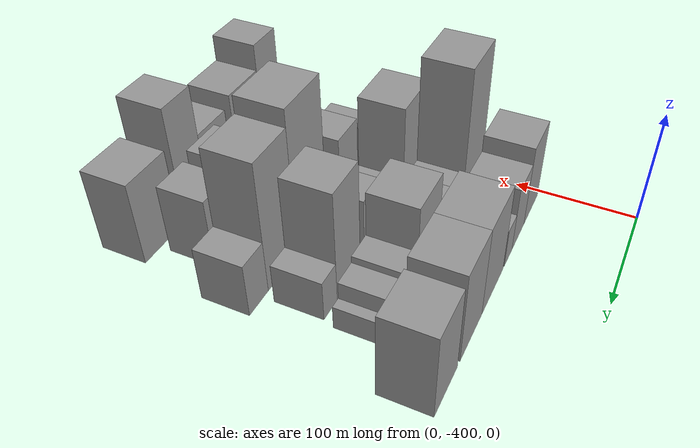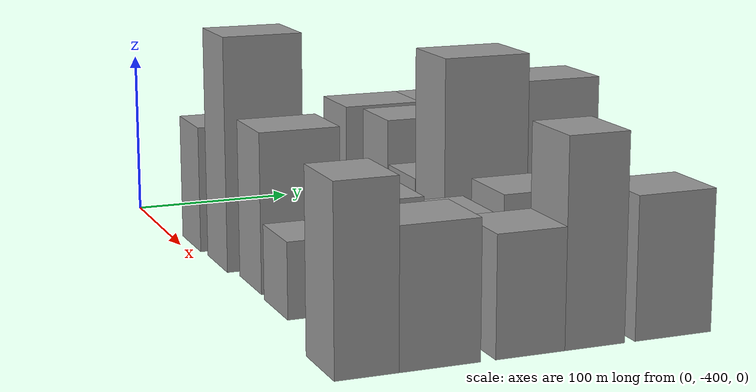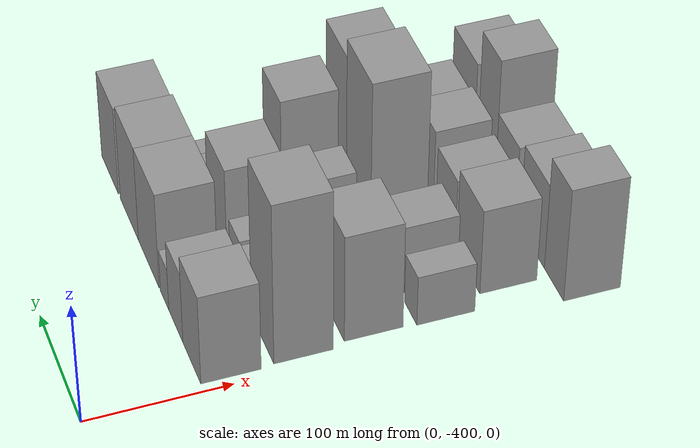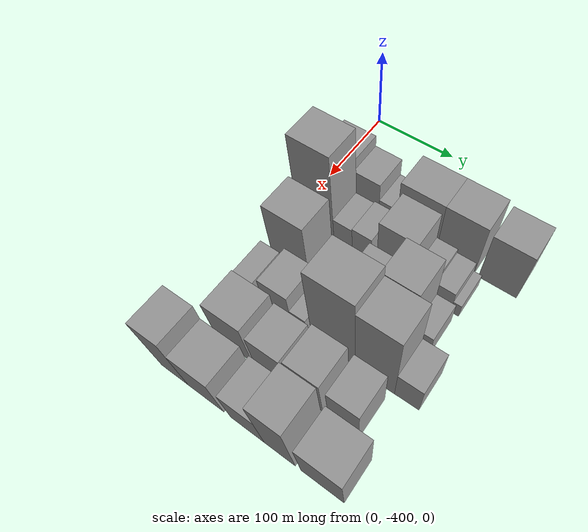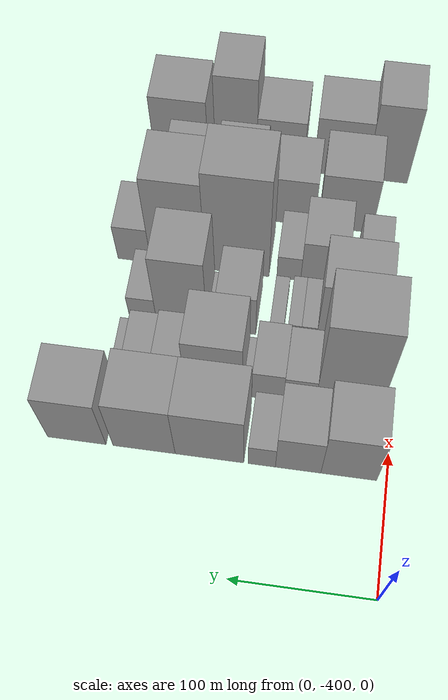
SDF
<sdf version="1.6">
 <world name="default">
  <model name="building_12">
   <static>1</static>
   <pose>100.0000 -373.7476 0 0.000000 0.000000 0.000000</pose>
   <link name="link">
    <pose>0 0 37.50 0 0 0</pose>
    <collision name="collision"><geometry><box><size>40.0000 38.7602 75.0000</size></box></geometry></collision>
    <visual name="visual">
     <cast_shadows>0</cast_shadows>
     <geometry><box><size>40.0000 38.7602 75.0000</size></box></geometry>
     <material>
      <script>
       <uri>model://grey_wall/materials/scripts</uri>
       <uri>model://grey_wall/materials/textures</uri>
       <name>vrc/grey_wall</name>
      </script>
     </material>
    </visual>
   </link>
  </model>
  <model name="building_13">
   <static>1</static>
   <pose>100.0000 -338.5559 0 0.000000 0.000000 0.000000</pose>
   <link name="link">
    <pose>0 0 30.00 0 0 0</pose>
    <collision name="collision"><geometry><box><size>40.0000 31.6232 60.0000</size></box></geometry></collision>
    <visual name="visual">
     <cast_shadows>0</cast_shadows>
     <geometry><box><size>40.0000 31.6232 60.0000</size></box></geometry>
     <material>
      <script>
       <uri>model://grey_wall/materials/scripts</uri>
       <uri>model://grey_wall/materials/textures</uri>
       <name>vrc/grey_wall</name>
      </script>
     </material>
    </visual>
   </link>
  </model>
  <model name="building_14">
   <static>1</static>
   <pose>100.0000 -313.1680 0 0.000000 0.000000 0.000000</pose>
   <link name="link">
    <pose>0 0 18.00 0 0 0</pose>
    <collision name="collision"><geometry><box><size>40.0000 19.1526 36.0000</size></box></geometry></collision>
    <visual name="visual">
     <cast_shadows>0</cast_shadows>
     <geometry><box><size>40.0000 19.1526 36.0000</size></box></geometry>
     <material>
      <script>
       <uri>model://grey_wall/materials/scripts</uri>
       <uri>model://grey_wall/materials/textures</uri>
       <name>vrc/grey_wall</name>
      </script>
     </material>
    </visual>
   </link>
  </model>
  <model name="building_15">
   <static>1</static>
   <pose>100.0000 -276.4596 0 0.000000 0.000000 0.000000</pose>
   <link name="link">
    <pose>0 0 40.50 0 0 0</pose>
    <collision name="collision"><geometry><box><size>40.0000 48.2642 81.0000</size></box></geometry></collision>
    <visual name="visual">
     <cast_shadows>0</cast_shadows>
     <geometry><box><size>40.0000 48.2642 81.0000</size></box></geometry>
     <material>
      <script>
       <uri>model://grey_wall/materials/scripts</uri>
       <uri>model://grey_wall/materials/textures</uri>
       <name>vrc/grey_wall</name>
      </script>
     </material>
    </visual>
   </link>
  </model>
  <model name="building_16">
   <static>1</static>
   <pose>100.0000 -230.2445 0 0.000000 0.000000 0.000000</pose>
   <link name="link">
    <pose>0 0 40.50 0 0 0</pose>
    <collision name="collision"><geometry><box><size>40.0000 44.1661 81.0000</size></box></geometry></collision>
    <visual name="visual">
     <cast_shadows>0</cast_shadows>
     <geometry><box><size>40.0000 44.1661 81.0000</size></box></geometry>
     <material>
      <script>
       <uri>model://grey_wall/materials/scripts</uri>
       <uri>model://grey_wall/materials/textures</uri>
       <name>vrc/grey_wall</name>
      </script>
     </material>
    </visual>
   </link>
  </model>
  <model name="building_17">
   <static>1</static>
   <pose>100.0000 -182.2852 0 0.000000 0.000000 0.000000</pose>
   <link name="link">
    <pose>0 0 37.50 0 0 0</pose>
    <collision name="collision"><geometry><box><size>40.0000 41.7525 75.0000</size></box></geometry></collision>
    <visual name="visual">
     <cast_shadows>0</cast_shadows>
     <geometry><box><size>40.0000 41.7525 75.0000</size></box></geometry>
     <material>
      <script>
       <uri>model://grey_wall/materials/scripts</uri>
       <uri>model://grey_wall/materials/textures</uri>
       <name>vrc/grey_wall</name>
      </script>
     </material>
    </visual>
   </link>
  </model>
  <model name="building_68">
   <static>1</static>
   <pose>149.0000 -368.2810 0 0.000000 0.000000 0.000000</pose>
   <link name="link">
    <pose>0 0 67.50 0 0 0</pose>
    <collision name="collision"><geometry><box><size>40.0000 46.1357 135.0000</size></box></geometry></collision>
    <visual name="visual">
     <cast_shadows>0</cast_shadows>
     <geometry><box><size>40.0000 46.1357 135.0000</size></box></geometry>
     <material>
      <script>
       <uri>model://grey_wall/materials/scripts</uri>
       <uri>model://grey_wall/materials/textures</uri>
       <name>vrc/grey_wall</name>
      </script>
     </material>
    </visual>
   </link>
  </model>
  <model name="building_69">
   <static>1</static>
   <pose>149.0000 -333.8725 0 0.000000 0.000000 0.000000</pose>
   <link name="link">
    <pose>0 0 21.00 0 0 0</pose>
    <collision name="collision"><geometry><box><size>40.0000 22.6814 42.0000</size></box></geometry></collision>
    <visual name="visual">
     <cast_shadows>0</cast_shadows>
     <geometry><box><size>40.0000 22.6814 42.0000</size></box></geometry>
     <material>
      <script>
       <uri>model://grey_wall/materials/scripts</uri>
       <uri>model://grey_wall/materials/textures</uri>
       <name>vrc/grey_wall</name>
      </script>
     </material>
    </visual>
   </link>
  </model>
  <model name="building_70">
   <static>1</static>
   <pose>149.0000 -311.1045 0 0.000000 0.000000 0.000000</pose>
   <link name="link">
    <pose>0 0 22.50 0 0 0</pose>
    <collision name="collision"><geometry><box><size>40.0000 22.8545 45.0000</size></box></geometry></collision>
    <visual name="visual">
     <cast_shadows>0</cast_shadows>
     <geometry><box><size>40.0000 22.8545 45.0000</size></box></geometry>
     <material>
      <script>
       <uri>model://grey_wall/materials/scripts</uri>
       <uri>model://grey_wall/materials/textures</uri>
       <name>vrc/grey_wall</name>
      </script>
     </material>
    </visual>
   </link>
  </model>
  <model name="building_71">
   <static>1</static>
   <pose>149.0000 -296.3232 0 0.000000 0.000000 0.000000</pose>
   <link name="link">
    <pose>0 0 7.50 0 0 0</pose>
    <collision name="collision"><geometry><box><size>40.0000 6.7082 15.0000</size></box></geometry></collision>
    <visual name="visual">
     <cast_shadows>0</cast_shadows>
     <geometry><box><size>40.0000 6.7082 15.0000</size></box></geometry>
     <material>
      <script>
       <uri>model://grey_wall/materials/scripts</uri>
       <uri>model://grey_wall/materials/textures</uri>
       <name>vrc/grey_wall</name>
      </script>
     </material>
    </visual>
   </link>
  </model>
  <model name="building_72">
   <static>1</static>
   <pose>149.0000 -272.2100 0 0.000000 0.000000 0.000000</pose>
   <link name="link">
    <pose>0 0 40.50 0 0 0</pose>
    <collision name="collision"><geometry><box><size>40.0000 41.5181 81.0000</size></box></geometry></collision>
    <visual name="visual">
     <cast_shadows>0</cast_shadows>
     <geometry><box><size>40.0000 41.5181 81.0000</size></box></geometry>
     <material>
      <script>
       <uri>model://grey_wall/materials/scripts</uri>
       <uri>model://grey_wall/materials/textures</uri>
       <name>vrc/grey_wall</name>
      </script>
     </material>
    </visual>
   </link>
  </model>
  <model name="building_73">
   <static>1</static>
   <pose>149.0000 -239.9075 0 0.000000 0.000000 0.000000</pose>
   <link name="link">
    <pose>0 0 21.00 0 0 0</pose>
    <collision name="collision"><geometry><box><size>40.0000 23.0868 42.0000</size></box></geometry></collision>
    <visual name="visual">
     <cast_shadows>0</cast_shadows>
     <geometry><box><size>40.0000 23.0868 42.0000</size></box></geometry>
     <material>
      <script>
       <uri>model://grey_wall/materials/scripts</uri>
       <uri>model://grey_wall/materials/textures</uri>
       <name>vrc/grey_wall</name>
      </script>
     </material>
    </visual>
   </link>
  </model>
  <model name="building_74">
   <static>1</static>
   <pose>149.0000 -217.8413 0 0.000000 0.000000 0.000000</pose>
   <link name="link">
    <pose>0 0 18.00 0 0 0</pose>
    <collision name="collision"><geometry><box><size>40.0000 21.0455 36.0000</size></box></geometry></collision>
    <visual name="visual">
     <cast_shadows>0</cast_shadows>
     <geometry><box><size>40.0000 21.0455 36.0000</size></box></geometry>
     <material>
      <script>
       <uri>model://grey_wall/materials/scripts</uri>
       <uri>model://grey_wall/materials/textures</uri>
       <name>vrc/grey_wall</name>
      </script>
     </material>
    </visual>
   </link>
  </model>
  <model name="building_75">
   <static>1</static>
   <pose>149.0000 -202.8934 0 0.000000 0.000000 0.000000</pose>
   <link name="link">
    <pose>0 0 10.50 0 0 0</pose>
    <collision name="collision"><geometry><box><size>40.0000 8.8504 21.0000</size></box></geometry></collision>
    <visual name="visual">
     <cast_shadows>0</cast_shadows>
     <geometry><box><size>40.0000 8.8504 21.0000</size></box></geometry>
     <material>
      <script>
       <uri>model://grey_wall/materials/scripts</uri>
       <uri>model://grey_wall/materials/textures</uri>
       <name>vrc/grey_wall</name>
      </script>
     </material>
    </visual>
   </link>
  </model>
  <model name="building_118">
   <static>1</static>
   <pose>198.0000 -363.7553 0 0.000000 0.000000 0.000000</pose>
   <link name="link">
    <pose>0 0 45.00 0 0 0</pose>
    <collision name="collision"><geometry><box><size>40.0000 46.0238 90.0000</size></box></geometry></collision>
    <visual name="visual">
     <cast_shadows>0</cast_shadows>
     <geometry><box><size>40.0000 46.0238 90.0000</size></box></geometry>
     <material>
      <script>
       <uri>model://grey_wall/materials/scripts</uri>
       <uri>model://grey_wall/materials/textures</uri>
       <name>vrc/grey_wall</name>
      </script>
     </material>
    </visual>
   </link>
  </model>
  <model name="building_119">
   <static>1</static>
   <pose>198.0000 -334.9804 0 0.000000 0.000000 0.000000</pose>
   <link name="link">
    <pose>0 0 12.00 0 0 0</pose>
    <collision name="collision"><geometry><box><size>40.0000 11.5260 24.0000</size></box></geometry></collision>
    <visual name="visual">
     <cast_shadows>0</cast_shadows>
     <geometry><box><size>40.0000 11.5260 24.0000</size></box></geometry>
     <material>
      <script>
       <uri>model://grey_wall/materials/scripts</uri>
       <uri>model://grey_wall/materials/textures</uri>
       <name>vrc/grey_wall</name>
      </script>
     </material>
    </visual>
   </link>
  </model>
  <model name="building_120">
   <static>1</static>
   <pose>198.0000 -324.3144 0 0.000000 0.000000 0.000000</pose>
   <link name="link">
    <pose>0 0 12.00 0 0 0</pose>
    <collision name="collision"><geometry><box><size>40.0000 9.8062 24.0000</size></box></geometry></collision>
    <visual name="visual">
     <cast_shadows>0</cast_shadows>
     <geometry><box><size>40.0000 9.8062 24.0000</size></box></geometry>
     <material>
      <script>
       <uri>model://grey_wall/materials/scripts</uri>
       <uri>model://grey_wall/materials/textures</uri>
       <name>vrc/grey_wall</name>
      </script>
     </material>
    </visual>
   </link>
  </model>
  <model name="building_121">
   <static>1</static>
   <pose>198.0000 -311.2843 0 0.000000 0.000000 0.000000</pose>
   <link name="link">
    <pose>0 0 10.50 0 0 0</pose>
    <collision name="collision"><geometry><box><size>40.0000 10.2540 21.0000</size></box></geometry></collision>
    <visual name="visual">
     <cast_shadows>0</cast_shadows>
     <geometry><box><size>40.0000 10.2540 21.0000</size></box></geometry>
     <material>
      <script>
       <uri>model://grey_wall/materials/scripts</uri>
       <uri>model://grey_wall/materials/textures</uri>
       <name>vrc/grey_wall</name>
      </script>
     </material>
    </visual>
   </link>
  </model>
  <model name="building_122">
   <static>1</static>
   <pose>198.0000 -281.6375 0 0.000000 0.000000 0.000000</pose>
   <link name="link">
    <pose>0 0 28.50 0 0 0</pose>
    <collision name="collision"><geometry><box><size>40.0000 29.0395 57.0000</size></box></geometry></collision>
    <visual name="visual">
     <cast_shadows>0</cast_shadows>
     <geometry><box><size>40.0000 29.0395 57.0000</size></box></geometry>
     <material>
      <script>
       <uri>model://grey_wall/materials/scripts</uri>
       <uri>model://grey_wall/materials/textures</uri>
       <name>vrc/grey_wall</name>
      </script>
     </material>
    </visual>
   </link>
  </model>
  <model name="building_123">
   <static>1</static>
   <pose>198.0000 -263.5571 0 0.000000 0.000000 0.000000</pose>
   <link name="link">
    <pose>0 0 7.50 0 0 0</pose>
    <collision name="collision"><geometry><box><size>40.0000 7.1214 15.0000</size></box></geometry></collision>
    <visual name="visual">
     <cast_shadows>0</cast_shadows>
     <geometry><box><size>40.0000 7.1214 15.0000</size></box></geometry>
     <material>
      <script>
       <uri>model://grey_wall/materials/scripts</uri>
       <uri>model://grey_wall/materials/textures</uri>
       <name>vrc/grey_wall</name>
      </script>
     </material>
    </visual>
   </link>
  </model>
  <model name="building_124">
   <static>1</static>
   <pose>198.0000 -241.0578 0 0.000000 0.000000 0.000000</pose>
   <link name="link">
    <pose>0 0 49.50 0 0 0</pose>
    <collision name="collision"><geometry><box><size>40.0000 37.8770 99.0000</size></box></geometry></collision>
    <visual name="visual">
     <cast_shadows>0</cast_shadows>
     <geometry><box><size>40.0000 37.8770 99.0000</size></box></geometry>
     <material>
      <script>
       <uri>model://grey_wall/materials/scripts</uri>
       <uri>model://grey_wall/materials/textures</uri>
       <name>vrc/grey_wall</name>
      </script>
     </material>
    </visual>
   </link>
  </model>
  <model name="building_125">
   <static>1</static>
   <pose>198.0000 -212.0112 0 0.000000 0.000000 0.000000</pose>
   <link name="link">
    <pose>0 0 18.00 0 0 0</pose>
    <collision name="collision"><geometry><box><size>40.0000 20.2162 36.0000</size></box></geometry></collision>
    <visual name="visual">
     <cast_shadows>0</cast_shadows>
     <geometry><box><size>40.0000 20.2162 36.0000</size></box></geometry>
     <material>
      <script>
       <uri>model://grey_wall/materials/scripts</uri>
       <uri>model://grey_wall/materials/textures</uri>
       <name>vrc/grey_wall</name>
      </script>
     </material>
    </visual>
   </link>
  </model>
  <model name="building_171">
   <static>1</static>
   <pose>247.0000 -376.6970 0 0.000000 0.000000 0.000000</pose>
   <link name="link">
    <pose>0 0 21.00 0 0 0</pose>
    <collision name="collision"><geometry><box><size>40.0000 22.9494 42.0000</size></box></geometry></collision>
    <visual name="visual">
     <cast_shadows>0</cast_shadows>
     <geometry><box><size>40.0000 22.9494 42.0000</size></box></geometry>
     <material>
      <script>
       <uri>model://grey_wall/materials/scripts</uri>
       <uri>model://grey_wall/materials/textures</uri>
       <name>vrc/grey_wall</name>
      </script>
     </material>
    </visual>
   </link>
  </model>
  <model name="building_172">
   <static>1</static>
   <pose>247.0000 -340.5945 0 0.000000 0.000000 0.000000</pose>
   <link name="link">
    <pose>0 0 28.50 0 0 0</pose>
    <collision name="collision"><geometry><box><size>40.0000 33.2554 57.0000</size></box></geometry></collision>
    <visual name="visual">
     <cast_shadows>0</cast_shadows>
     <geometry><box><size>40.0000 33.2554 57.0000</size></box></geometry>
     <material>
      <script>
       <uri>model://grey_wall/materials/scripts</uri>
       <uri>model://grey_wall/materials/textures</uri>
       <name>vrc/grey_wall</name>
      </script>
     </material>
    </visual>
   </link>
  </model>
  <model name="building_173">
   <static>1</static>
   <pose>247.0000 -314.8777 0 0.000000 0.000000 0.000000</pose>
   <link name="link">
    <pose>0 0 16.50 0 0 0</pose>
    <collision name="collision"><geometry><box><size>40.0000 18.1783 33.0000</size></box></geometry></collision>
    <visual name="visual">
     <cast_shadows>0</cast_shadows>
     <geometry><box><size>40.0000 18.1783 33.0000</size></box></geometry>
     <material>
      <script>
       <uri>model://grey_wall/materials/scripts</uri>
       <uri>model://grey_wall/materials/textures</uri>
       <name>vrc/grey_wall</name>
      </script>
     </material>
    </visual>
   </link>
  </model>
  <model name="building_174">
   <static>1</static>
   <pose>247.0000 -275.4045 0 0.000000 0.000000 0.000000</pose>
   <link name="link">
    <pose>0 0 66.00 0 0 0</pose>
    <collision name="collision"><geometry><box><size>40.0000 48.7681 132.0000</size></box></geometry></collision>
    <visual name="visual">
     <cast_shadows>0</cast_shadows>
     <geometry><box><size>40.0000 48.7681 132.0000</size></box></geometry>
     <material>
      <script>
       <uri>model://grey_wall/materials/scripts</uri>
       <uri>model://grey_wall/materials/textures</uri>
       <name>vrc/grey_wall</name>
      </script>
     </material>
    </visual>
   </link>
  </model>
  <model name="building_175">
   <static>1</static>
   <pose>247.0000 -229.9747 0 0.000000 0.000000 0.000000</pose>
   <link name="link">
    <pose>0 0 58.50 0 0 0</pose>
    <collision name="collision"><geometry><box><size>40.0000 42.0915 117.0000</size></box></geometry></collision>
    <visual name="visual">
     <cast_shadows>0</cast_shadows>
     <geometry><box><size>40.0000 42.0915 117.0000</size></box></geometry>
     <material>
      <script>
       <uri>model://grey_wall/materials/scripts</uri>
       <uri>model://grey_wall/materials/textures</uri>
       <name>vrc/grey_wall</name>
      </script>
     </material>
    </visual>
   </link>
  </model>
  <model name="building_176">
   <static>1</static>
   <pose>247.0000 -196.1722 0 0.000000 0.000000 0.000000</pose>
   <link name="link">
    <pose>0 0 24.00 0 0 0</pose>
    <collision name="collision"><geometry><box><size>40.0000 25.5135 48.0000</size></box></geometry></collision>
    <visual name="visual">
     <cast_shadows>0</cast_shadows>
     <geometry><box><size>40.0000 25.5135 48.0000</size></box></geometry>
     <material>
      <script>
       <uri>model://grey_wall/materials/scripts</uri>
       <uri>model://grey_wall/materials/textures</uri>
       <name>vrc/grey_wall</name>
      </script>
     </material>
    </visual>
   </link>
  </model>
  <model name="building_217">
   <static>1</static>
   <pose>296.0000 -353.2318 0 0.000000 0.000000 0.000000</pose>
   <link name="link">
    <pose>0 0 36.00 0 0 0</pose>
    <collision name="collision"><geometry><box><size>40.0000 41.9450 72.0000</size></box></geometry></collision>
    <visual name="visual">
     <cast_shadows>0</cast_shadows>
     <geometry><box><size>40.0000 41.9450 72.0000</size></box></geometry>
     <material>
      <script>
       <uri>model://grey_wall/materials/scripts</uri>
       <uri>model://grey_wall/materials/textures</uri>
       <name>vrc/grey_wall</name>
      </script>
     </material>
    </visual>
   </link>
  </model>
  <model name="building_218">
   <static>1</static>
   <pose>296.0000 -311.2627 0 0.000000 0.000000 0.000000</pose>
   <link name="link">
    <pose>0 0 30.00 0 0 0</pose>
    <collision name="collision"><geometry><box><size>40.0000 35.9932 60.0000</size></box></geometry></collision>
    <visual name="visual">
     <cast_shadows>0</cast_shadows>
     <geometry><box><size>40.0000 35.9932 60.0000</size></box></geometry>
     <material>
      <script>
       <uri>model://grey_wall/materials/scripts</uri>
       <uri>model://grey_wall/materials/textures</uri>
       <name>vrc/grey_wall</name>
      </script>
     </material>
    </visual>
   </link>
  </model>
  <model name="building_219">
   <static>1</static>
   <pose>296.0000 -270.1028 0 0.000000 0.000000 0.000000</pose>
   <link name="link">
    <pose>0 0 34.50 0 0 0</pose>
    <collision name="collision"><geometry><box><size>40.0000 36.3265 69.0000</size></box></geometry></collision>
    <visual name="visual">
     <cast_shadows>0</cast_shadows>
     <geometry><box><size>40.0000 36.3265 69.0000</size></box></geometry>
     <material>
      <script>
       <uri>model://grey_wall/materials/scripts</uri>
       <uri>model://grey_wall/materials/textures</uri>
       <name>vrc/grey_wall</name>
      </script>
     </material>
    </visual>
   </link>
  </model>
  <model name="building_220">
   <static>1</static>
   <pose>296.0000 -229.6660 0 0.000000 0.000000 0.000000</pose>
   <link name="link">
    <pose>0 0 31.50 0 0 0</pose>
    <collision name="collision"><geometry><box><size>40.0000 32.5473 63.0000</size></box></geometry></collision>
    <visual name="visual">
     <cast_shadows>0</cast_shadows>
     <geometry><box><size>40.0000 32.5473 63.0000</size></box></geometry>
     <material>
      <script>
       <uri>model://grey_wall/materials/scripts</uri>
       <uri>model://grey_wall/materials/textures</uri>
       <name>vrc/grey_wall</name>
      </script>
     </material>
    </visual>
   </link>
  </model>
  <model name="building_263">
   <static>1</static>
   <pose>345.0000 -381.9433 0 0.000000 0.000000 0.000000</pose>
   <link name="link">
    <pose>0 0 48.00 0 0 0</pose>
    <collision name="collision"><geometry><box><size>40.0000 32.8082 96.0000</size></box></geometry></collision>
    <visual name="visual">
     <cast_shadows>0</cast_shadows>
     <geometry><box><size>40.0000 32.8082 96.0000</size></box></geometry>
     <material>
      <script>
       <uri>model://grey_wall/materials/scripts</uri>
       <uri>model://grey_wall/materials/textures</uri>
       <name>vrc/grey_wall</name>
      </script>
     </material>
    </visual>
   </link>
  </model>
  <model name="building_264">
   <static>1</static>
   <pose>345.0000 -344.3649 0 0.000000 0.000000 0.000000</pose>
   <link name="link">
    <pose>0 0 36.00 0 0 0</pose>
    <collision name="collision"><geometry><box><size>40.0000 42.3486 72.0000</size></box></geometry></collision>
    <visual name="visual">
     <cast_shadows>0</cast_shadows>
     <geometry><box><size>40.0000 42.3486 72.0000</size></box></geometry>
     <material>
      <script>
       <uri>model://grey_wall/materials/scripts</uri>
       <uri>model://grey_wall/materials/textures</uri>
       <name>vrc/grey_wall</name>
      </script>
     </material>
    </visual>
   </link>
  </model>
  <model name="building_265">
   <static>1</static>
   <pose>345.0000 -296.4367 0 0.000000 0.000000 0.000000</pose>
   <link name="link">
    <pose>0 0 31.50 0 0 0</pose>
    <collision name="collision"><geometry><box><size>40.0000 37.5078 63.0000</size></box></geometry></collision>
    <visual name="visual">
     <cast_shadows>0</cast_shadows>
     <geometry><box><size>40.0000 37.5078 63.0000</size></box></geometry>
     <material>
      <script>
       <uri>model://grey_wall/materials/scripts</uri>
       <uri>model://grey_wall/materials/textures</uri>
       <name>vrc/grey_wall</name>
      </script>
     </material>
    </visual>
   </link>
  </model>
  <model name="building_266">
   <static>1</static>
   <pose>345.0000 -261.0344 0 0.000000 0.000000 0.000000</pose>
   <link name="link">
    <pose>0 0 54.00 0 0 0</pose>
    <collision name="collision"><geometry><box><size>40.0000 33.2969 108.0000</size></box></geometry></collision>
    <visual name="visual">
     <cast_shadows>0</cast_shadows>
     <geometry><box><size>40.0000 33.2969 108.0000</size></box></geometry>
     <material>
      <script>
       <uri>model://grey_wall/materials/scripts</uri>
       <uri>model://grey_wall/materials/textures</uri>
       <name>vrc/grey_wall</name>
      </script>
     </material>
    </visual>
   </link>
  </model>
  <model name="building_267">
   <static>1</static>
   <pose>345.0000 -216.4704 0 0.000000 0.000000 0.000000</pose>
   <link name="link">
    <pose>0 0 37.50 0 0 0</pose>
    <collision name="collision"><geometry><box><size>40.0000 43.8311 75.0000</size></box></geometry></collision>
    <visual name="visual">
     <cast_shadows>0</cast_shadows>
     <geometry><box><size>40.0000 43.8311 75.0000</size></box></geometry>
     <material>
      <script>
       <uri>model://grey_wall/materials/scripts</uri>
       <uri>model://grey_wall/materials/textures</uri>
       <name>vrc/grey_wall</name>
      </script>
     </material>
    </visual>
   </link>
  </model>
 </world>
</sdf>
